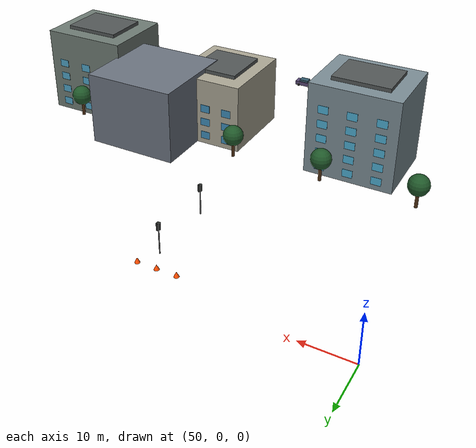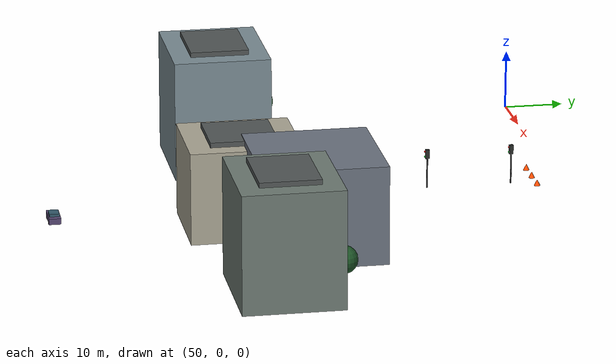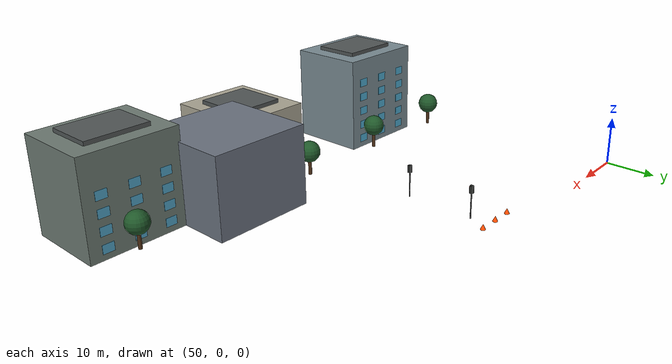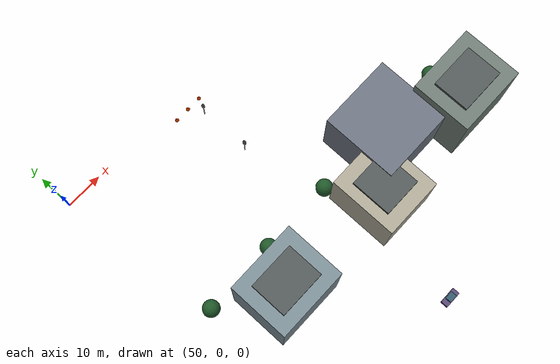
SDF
<sdf version="1.9">
 <world name="smart_city">
  <model name="building_4">
   <static>true</static>
   <pose>115 -45 8 0 0 0</pose>
   <link name="building">
    <visual name="v">
     <geometry><box><size>20 20 16</size></box></geometry>
     <material><ambient>0.42 0.45 0.5 1</ambient></material>
    </visual>
   </link>
  </model>
  <model name="cone_1">
   <static>true</static>
   <pose>84 -4 0.5 0 0 0</pose>
   <link name="cone">
    <visual name="v">
     <geometry><cone><radius>0.5</radius><length>1</length></cone></geometry>
     <material><ambient>1 0.3 0 1</ambient><diffuse>1 0.3 0 1</diffuse></material>
    </visual>
   </link>
  </model>
  <model name="cone_2">
   <static>true</static>
   <pose>88 -4 0.5 0 0 0</pose>
   <link name="cone">
    <visual name="v">
     <geometry><cone><radius>0.5</radius><length>1</length></cone></geometry>
     <material><ambient>1 0.3 0 1</ambient><diffuse>1 0.3 0 1</diffuse></material>
    </visual>
   </link>
  </model>
  <model name="cone_3">
   <static>true</static>
   <pose>92 -4 0.5 0 0 0</pose>
   <link name="cone">
    <visual name="v">
     <geometry><cone><radius>0.5</radius><length>1</length></cone></geometry>
     <material><ambient>1 0.3 0 1</ambient><diffuse>1 0.3 0 1</diffuse></material>
    </visual>
   </link>
  </model>
  <model name="city_block_08">
   <static>true</static>
   <pose>70 -54 0 0 0 0</pose>
   <link name="building">
    <visual name="facade">
     <pose>0 0 10.0 0 0 0</pose>
     <geometry><box><size>19 16 20</size></box></geometry>
     <material><ambient>0.48 0.55 0.58 1</ambient><diffuse>0.48 0.55 0.58 1</diffuse></material>
    </visual>
    <visual name="window_0_-608">
     <pose>-6.08 8.025 2.00 0 0 0</pose>
     <geometry><box><size>2.2 0.08 1.7</size></box></geometry>
     <material>
      <ambient>0.30 0.68 0.82 1</ambient>
      <diffuse>0.30 0.68 0.82 1</diffuse>
      <specular>0.35 0.35 0.35 1</specular>
     </material>
    </visual>
    <visual name="window_0_0">
     <pose>0.00 8.025 2.00 0 0 0</pose>
     <geometry><box><size>2.2 0.08 1.7</size></box></geometry>
     <material>
      <ambient>0.30 0.68 0.82 1</ambient>
      <diffuse>0.30 0.68 0.82 1</diffuse>
      <specular>0.35 0.35 0.35 1</specular>
     </material>
    </visual>
    <visual name="window_0_608">
     <pose>6.08 8.025 2.00 0 0 0</pose>
     <geometry><box><size>2.2 0.08 1.7</size></box></geometry>
     <material>
      <ambient>0.30 0.68 0.82 1</ambient>
      <diffuse>0.30 0.68 0.82 1</diffuse>
      <specular>0.35 0.35 0.35 1</specular>
     </material>
    </visual>
    <visual name="window_1_-608">
     <pose>-6.08 8.025 5.20 0 0 0</pose>
     <geometry><box><size>2.2 0.08 1.7</size></box></geometry>
     <material>
      <ambient>0.30 0.68 0.82 1</ambient>
      <diffuse>0.30 0.68 0.82 1</diffuse>
      <specular>0.35 0.35 0.35 1</specular>
     </material>
    </visual>
    <visual name="window_1_0">
     <pose>0.00 8.025 5.20 0 0 0</pose>
     <geometry><box><size>2.2 0.08 1.7</size></box></geometry>
     <material>
      <ambient>0.30 0.68 0.82 1</ambient>
      <diffuse>0.30 0.68 0.82 1</diffuse>
      <specular>0.35 0.35 0.35 1</specular>
     </material>
    </visual>
    <visual name="window_1_608">
     <pose>6.08 8.025 5.20 0 0 0</pose>
     <geometry><box><size>2.2 0.08 1.7</size></box></geometry>
     <material>
      <ambient>0.30 0.68 0.82 1</ambient>
      <diffuse>0.30 0.68 0.82 1</diffuse>
      <specular>0.35 0.35 0.35 1</specular>
     </material>
    </visual>
    <visual name="window_2_-608">
     <pose>-6.08 8.025 8.40 0 0 0</pose>
     <geometry><box><size>2.2 0.08 1.7</size></box></geometry>
     <material>
      <ambient>0.30 0.68 0.82 1</ambient>
      <diffuse>0.30 0.68 0.82 1</diffuse>
      <specular>0.35 0.35 0.35 1</specular>
     </material>
    </visual>
    <visual name="window_2_0">
     <pose>0.00 8.025 8.40 0 0 0</pose>
     <geometry><box><size>2.2 0.08 1.7</size></box></geometry>
     <material>
      <ambient>0.30 0.68 0.82 1</ambient>
      <diffuse>0.30 0.68 0.82 1</diffuse>
      <specular>0.35 0.35 0.35 1</specular>
     </material>
    </visual>
    <visual name="window_2_608">
     <pose>6.08 8.025 8.40 0 0 0</pose>
     <geometry><box><size>2.2 0.08 1.7</size></box></geometry>
     <material>
      <ambient>0.30 0.68 0.82 1</ambient>
      <diffuse>0.30 0.68 0.82 1</diffuse>
      <specular>0.35 0.35 0.35 1</specular>
     </material>
    </visual>
    <visual name="window_3_-608">
     <pose>-6.08 8.025 11.60 0 0 0</pose>
     <geometry><box><size>2.2 0.08 1.7</size></box></geometry>
     <material>
      <ambient>0.30 0.68 0.82 1</ambient>
      <diffuse>0.30 0.68 0.82 1</diffuse>
      <specular>0.35 0.35 0.35 1</specular>
     </material>
    </visual>
    <visual name="window_3_0">
     <pose>0.00 8.025 11.60 0 0 0</pose>
     <geometry><box><size>2.2 0.08 1.7</size></box></geometry>
     <material>
      <ambient>0.30 0.68 0.82 1</ambient>
      <diffuse>0.30 0.68 0.82 1</diffuse>
      <specular>0.35 0.35 0.35 1</specular>
     </material>
    </visual>
    <visual name="window_3_608">
     <pose>6.08 8.025 11.60 0 0 0</pose>
     <geometry><box><size>2.2 0.08 1.7</size></box></geometry>
     <material>
      <ambient>0.30 0.68 0.82 1</ambient>
      <diffuse>0.30 0.68 0.82 1</diffuse>
      <specular>0.35 0.35 0.35 1</specular>
     </material>
    </visual>
    <visual name="window_4_-608">
     <pose>-6.08 8.025 14.80 0 0 0</pose>
     <geometry><box><size>2.2 0.08 1.7</size></box></geometry>
     <material>
      <ambient>0.30 0.68 0.82 1</ambient>
      <diffuse>0.30 0.68 0.82 1</diffuse>
      <specular>0.35 0.35 0.35 1</specular>
     </material>
    </visual>
    <visual name="window_4_0">
     <pose>0.00 8.025 14.80 0 0 0</pose>
     <geometry><box><size>2.2 0.08 1.7</size></box></geometry>
     <material>
      <ambient>0.30 0.68 0.82 1</ambient>
      <diffuse>0.30 0.68 0.82 1</diffuse>
      <specular>0.35 0.35 0.35 1</specular>
     </material>
    </visual>
    <visual name="window_4_608">
     <pose>6.08 8.025 14.80 0 0 0</pose>
     <geometry><box><size>2.2 0.08 1.7</size></box></geometry>
     <material>
      <ambient>0.30 0.68 0.82 1</ambient>
      <diffuse>0.30 0.68 0.82 1</diffuse>
      <specular>0.35 0.35 0.35 1</specular>
     </material>
    </visual>
    <visual name="roof">
     <pose>0 0 20.4 0 0 0</pose>
     <geometry><box><size>12.3 9.6 0.8</size></box></geometry>
     <material><ambient>0.32 0.34 0.34 1</ambient><diffuse>0.32 0.34 0.34 1</diffuse></material>
    </visual>
   </link>
  </model>
  <model name="city_block_09">
   <static>true</static>
   <pose>103 -55 0 0 0 0</pose>
   <link name="building">
    <visual name="facade">
     <pose>0 0 7.5 0 0 0</pose>
     <geometry><box><size>16 18 15</size></box></geometry>
     <material><ambient>0.67 0.65 0.58 1</ambient><diffuse>0.67 0.65 0.58 1</diffuse></material>
    </visual>
    <visual name="window_0_-512">
     <pose>-5.12 9.025 2.00 0 0 0</pose>
     <geometry><box><size>2.2 0.08 1.7</size></box></geometry>
     <material>
      <ambient>0.24 0.55 0.72 1</ambient>
      <diffuse>0.24 0.55 0.72 1</diffuse>
      <specular>0.35 0.35 0.35 1</specular>
     </material>
    </visual>
    <visual name="window_0_0">
     <pose>0.00 9.025 2.00 0 0 0</pose>
     <geometry><box><size>2.2 0.08 1.7</size></box></geometry>
     <material>
      <ambient>0.24 0.55 0.72 1</ambient>
      <diffuse>0.24 0.55 0.72 1</diffuse>
      <specular>0.35 0.35 0.35 1</specular>
     </material>
    </visual>
    <visual name="window_0_512">
     <pose>5.12 9.025 2.00 0 0 0</pose>
     <geometry><box><size>2.2 0.08 1.7</size></box></geometry>
     <material>
      <ambient>0.24 0.55 0.72 1</ambient>
      <diffuse>0.24 0.55 0.72 1</diffuse>
      <specular>0.35 0.35 0.35 1</specular>
     </material>
    </visual>
    <visual name="window_1_-512">
     <pose>-5.12 9.025 5.20 0 0 0</pose>
     <geometry><box><size>2.2 0.08 1.7</size></box></geometry>
     <material>
      <ambient>0.24 0.55 0.72 1</ambient>
      <diffuse>0.24 0.55 0.72 1</diffuse>
      <specular>0.35 0.35 0.35 1</specular>
     </material>
    </visual>
    <visual name="window_1_0">
     <pose>0.00 9.025 5.20 0 0 0</pose>
     <geometry><box><size>2.2 0.08 1.7</size></box></geometry>
     <material>
      <ambient>0.24 0.55 0.72 1</ambient>
      <diffuse>0.24 0.55 0.72 1</diffuse>
      <specular>0.35 0.35 0.35 1</specular>
     </material>
    </visual>
    <visual name="window_1_512">
     <pose>5.12 9.025 5.20 0 0 0</pose>
     <geometry><box><size>2.2 0.08 1.7</size></box></geometry>
     <material>
      <ambient>0.24 0.55 0.72 1</ambient>
      <diffuse>0.24 0.55 0.72 1</diffuse>
      <specular>0.35 0.35 0.35 1</specular>
     </material>
    </visual>
    <visual name="window_2_-512">
     <pose>-5.12 9.025 8.40 0 0 0</pose>
     <geometry><box><size>2.2 0.08 1.7</size></box></geometry>
     <material>
      <ambient>0.24 0.55 0.72 1</ambient>
      <diffuse>0.24 0.55 0.72 1</diffuse>
      <specular>0.35 0.35 0.35 1</specular>
     </material>
    </visual>
    <visual name="window_2_0">
     <pose>0.00 9.025 8.40 0 0 0</pose>
     <geometry><box><size>2.2 0.08 1.7</size></box></geometry>
     <material>
      <ambient>0.24 0.55 0.72 1</ambient>
      <diffuse>0.24 0.55 0.72 1</diffuse>
      <specular>0.35 0.35 0.35 1</specular>
     </material>
    </visual>
    <visual name="window_2_512">
     <pose>5.12 9.025 8.40 0 0 0</pose>
     <geometry><box><size>2.2 0.08 1.7</size></box></geometry>
     <material>
      <ambient>0.24 0.55 0.72 1</ambient>
      <diffuse>0.24 0.55 0.72 1</diffuse>
      <specular>0.35 0.35 0.35 1</specular>
     </material>
    </visual>
    <visual name="roof">
     <pose>0 0 15.4 0 0 0</pose>
     <geometry><box><size>10.4 10.8 0.8</size></box></geometry>
     <material><ambient>0.32 0.34 0.34 1</ambient><diffuse>0.32 0.34 0.34 1</diffuse></material>
    </visual>
   </link>
  </model>
  <model name="city_block_10">
   <static>true</static>
   <pose>134 -53 0 0 0 0</pose>
   <link name="building">
    <visual name="facade">
     <pose>0 0 9.5 0 0 0</pose>
     <geometry><box><size>19 16 19</size></box></geometry>
     <material><ambient>0.43 0.48 0.45 1</ambient><diffuse>0.43 0.48 0.45 1</diffuse></material>
    </visual>
    <visual name="window_0_-608">
     <pose>-6.08 8.025 2.00 0 0 0</pose>
     <geometry><box><size>2.2 0.08 1.7</size></box></geometry>
     <material>
      <ambient>0.31 0.64 0.78 1</ambient>
      <diffuse>0.31 0.64 0.78 1</diffuse>
      <specular>0.35 0.35 0.35 1</specular>
     </material>
    </visual>
    <visual name="window_0_0">
     <pose>0.00 8.025 2.00 0 0 0</pose>
     <geometry><box><size>2.2 0.08 1.7</size></box></geometry>
     <material>
      <ambient>0.31 0.64 0.78 1</ambient>
      <diffuse>0.31 0.64 0.78 1</diffuse>
      <specular>0.35 0.35 0.35 1</specular>
     </material>
    </visual>
    <visual name="window_0_608">
     <pose>6.08 8.025 2.00 0 0 0</pose>
     <geometry><box><size>2.2 0.08 1.7</size></box></geometry>
     <material>
      <ambient>0.31 0.64 0.78 1</ambient>
      <diffuse>0.31 0.64 0.78 1</diffuse>
      <specular>0.35 0.35 0.35 1</specular>
     </material>
    </visual>
    <visual name="window_1_-608">
     <pose>-6.08 8.025 5.20 0 0 0</pose>
     <geometry><box><size>2.2 0.08 1.7</size></box></geometry>
     <material>
      <ambient>0.31 0.64 0.78 1</ambient>
      <diffuse>0.31 0.64 0.78 1</diffuse>
      <specular>0.35 0.35 0.35 1</specular>
     </material>
    </visual>
    <visual name="window_1_0">
     <pose>0.00 8.025 5.20 0 0 0</pose>
     <geometry><box><size>2.2 0.08 1.7</size></box></geometry>
     <material>
      <ambient>0.31 0.64 0.78 1</ambient>
      <diffuse>0.31 0.64 0.78 1</diffuse>
      <specular>0.35 0.35 0.35 1</specular>
     </material>
    </visual>
    <visual name="window_1_608">
     <pose>6.08 8.025 5.20 0 0 0</pose>
     <geometry><box><size>2.2 0.08 1.7</size></box></geometry>
     <material>
      <ambient>0.31 0.64 0.78 1</ambient>
      <diffuse>0.31 0.64 0.78 1</diffuse>
      <specular>0.35 0.35 0.35 1</specular>
     </material>
    </visual>
    <visual name="window_2_-608">
     <pose>-6.08 8.025 8.40 0 0 0</pose>
     <geometry><box><size>2.2 0.08 1.7</size></box></geometry>
     <material>
      <ambient>0.31 0.64 0.78 1</ambient>
      <diffuse>0.31 0.64 0.78 1</diffuse>
      <specular>0.35 0.35 0.35 1</specular>
     </material>
    </visual>
    <visual name="window_2_0">
     <pose>0.00 8.025 8.40 0 0 0</pose>
     <geometry><box><size>2.2 0.08 1.7</size></box></geometry>
     <material>
      <ambient>0.31 0.64 0.78 1</ambient>
      <diffuse>0.31 0.64 0.78 1</diffuse>
      <specular>0.35 0.35 0.35 1</specular>
     </material>
    </visual>
    <visual name="window_2_608">
     <pose>6.08 8.025 8.40 0 0 0</pose>
     <geometry><box><size>2.2 0.08 1.7</size></box></geometry>
     <material>
      <ambient>0.31 0.64 0.78 1</ambient>
      <diffuse>0.31 0.64 0.78 1</diffuse>
      <specular>0.35 0.35 0.35 1</specular>
     </material>
    </visual>
    <visual name="window_3_-608">
     <pose>-6.08 8.025 11.60 0 0 0</pose>
     <geometry><box><size>2.2 0.08 1.7</size></box></geometry>
     <material>
      <ambient>0.31 0.64 0.78 1</ambient>
      <diffuse>0.31 0.64 0.78 1</diffuse>
      <specular>0.35 0.35 0.35 1</specular>
     </material>
    </visual>
    <visual name="window_3_0">
     <pose>0.00 8.025 11.60 0 0 0</pose>
     <geometry><box><size>2.2 0.08 1.7</size></box></geometry>
     <material>
      <ambient>0.31 0.64 0.78 1</ambient>
      <diffuse>0.31 0.64 0.78 1</diffuse>
      <specular>0.35 0.35 0.35 1</specular>
     </material>
    </visual>
    <visual name="window_3_608">
     <pose>6.08 8.025 11.60 0 0 0</pose>
     <geometry><box><size>2.2 0.08 1.7</size></box></geometry>
     <material>
      <ambient>0.31 0.64 0.78 1</ambient>
      <diffuse>0.31 0.64 0.78 1</diffuse>
      <specular>0.35 0.35 0.35 1</specular>
     </material>
    </visual>
    <visual name="roof">
     <pose>0 0 19.4 0 0 0</pose>
     <geometry><box><size>12.3 9.6 0.8</size></box></geometry>
     <material><ambient>0.32 0.34 0.34 1</ambient><diffuse>0.32 0.34 0.34 1</diffuse></material>
    </visual>
   </link>
  </model>
  <model name="street_tree_12">
   <static>true</static>
   <pose>55 -44 0 0 0 0</pose>
   <link name="tree">
    <visual name="trunk">
     <pose>0 0 2 0 0 0</pose>
     <geometry><cylinder><radius>0.35</radius><length>4</length></cylinder></geometry>
     <material><ambient>0.30 0.18 0.08 1</ambient><diffuse>0.30 0.18 0.08 1</diffuse></material>
    </visual>
    <visual name="crown">
     <pose>0 0 5 0 0 0</pose>
     <geometry><sphere><radius>2.2</radius></sphere></geometry>
     <material><ambient>0.12 0.34 0.16 1</ambient><diffuse>0.12 0.34 0.16 1</diffuse></material>
    </visual>
   </link>
  </model>
  <model name="street_tree_13">
   <static>true</static>
   <pose>75 -44 0 0 0 0</pose>
   <link name="tree">
    <visual name="trunk">
     <pose>0 0 2 0 0 0</pose>
     <geometry><cylinder><radius>0.35</radius><length>4</length></cylinder></geometry>
     <material><ambient>0.30 0.18 0.08 1</ambient><diffuse>0.30 0.18 0.08 1</diffuse></material>
    </visual>
    <visual name="crown">
     <pose>0 0 5 0 0 0</pose>
     <geometry><sphere><radius>2.2</radius></sphere></geometry>
     <material><ambient>0.12 0.34 0.16 1</ambient><diffuse>0.12 0.34 0.16 1</diffuse></material>
    </visual>
   </link>
  </model>
  <model name="street_tree_14">
   <static>true</static>
   <pose>95 -44 0 0 0 0</pose>
   <link name="tree">
    <visual name="trunk">
     <pose>0 0 2 0 0 0</pose>
     <geometry><cylinder><radius>0.35</radius><length>4</length></cylinder></geometry>
     <material><ambient>0.30 0.18 0.08 1</ambient><diffuse>0.30 0.18 0.08 1</diffuse></material>
    </visual>
    <visual name="crown">
     <pose>0 0 5 0 0 0</pose>
     <geometry><sphere><radius>2.2</radius></sphere></geometry>
     <material><ambient>0.12 0.34 0.16 1</ambient><diffuse>0.12 0.34 0.16 1</diffuse></material>
    </visual>
   </link>
  </model>
  <model name="street_tree_15">
   <static>true</static>
   <pose>115 -44 0 0 0 0</pose>
   <link name="tree">
    <visual name="trunk">
     <pose>0 0 2 0 0 0</pose>
     <geometry><cylinder><radius>0.35</radius><length>4</length></cylinder></geometry>
     <material><ambient>0.30 0.18 0.08 1</ambient><diffuse>0.30 0.18 0.08 1</diffuse></material>
    </visual>
    <visual name="crown">
     <pose>0 0 5 0 0 0</pose>
     <geometry><sphere><radius>2.2</radius></sphere></geometry>
     <material><ambient>0.12 0.34 0.16 1</ambient><diffuse>0.12 0.34 0.16 1</diffuse></material>
    </visual>
   </link>
  </model>
  <model name="street_tree_16">
   <static>true</static>
   <pose>135 -44 0 0 0 0</pose>
   <link name="tree">
    <visual name="trunk">
     <pose>0 0 2 0 0 0</pose>
     <geometry><cylinder><radius>0.35</radius><length>4</length></cylinder></geometry>
     <material><ambient>0.30 0.18 0.08 1</ambient><diffuse>0.30 0.18 0.08 1</diffuse></material>
    </visual>
    <visual name="crown">
     <pose>0 0 5 0 0 0</pose>
     <geometry><sphere><radius>2.2</radius></sphere></geometry>
     <material><ambient>0.12 0.34 0.16 1</ambient><diffuse>0.12 0.34 0.16 1</diffuse></material>
    </visual>
   </link>
  </model>
  <model name="traffic_signal_7">
   <static>true</static>
   <pose>90 -8 0 0 0 0</pose>
   <link name="signal">
    <visual name="mast">
     <pose>0 0 3 0 0 0</pose>
     <geometry><cylinder><radius>0.12</radius><length>6</length></cylinder></geometry>
     <material><ambient>0.12 0.12 0.12 1</ambient><diffuse>0.12 0.12 0.12 1</diffuse></material>
    </visual>
    <visual name="head">
     <pose>0 0 5.8 0 0 0</pose>
     <geometry><box><size>0.55 0.65 1.5</size></box></geometry>
     <material><ambient>0.16 0.17 0.16 1</ambient><diffuse>0.16 0.17 0.16 1</diffuse></material>
    </visual>
    <visual name="red_lamp">
     <pose>0 -0.34 6.2 0 0 0</pose>
     <geometry><sphere><radius>0.16</radius></sphere></geometry>
     <material>
      <ambient>0.9 0.04 0.02 1</ambient>
      <diffuse>0.9 0.04 0.02 1</diffuse>
      <emissive>0.6 0 0 1</emissive>
     </material>
    </visual>
    <visual name="green_lamp">
     <pose>0 -0.34 5.35 0 0 0</pose>
     <geometry><sphere><radius>0.16</radius></sphere></geometry>
     <material><ambient>0.02 0.7 0.12 1</ambient><diffuse>0.02 0.7 0.12 1</diffuse></material>
    </visual>
   </link>
  </model>
  <model name="traffic_signal_8">
   <static>true</static>
   <pose>90 -22 0 0 0 0</pose>
   <link name="signal">
    <visual name="mast">
     <pose>0 0 3 0 0 0</pose>
     <geometry><cylinder><radius>0.12</radius><length>6</length></cylinder></geometry>
     <material><ambient>0.12 0.12 0.12 1</ambient><diffuse>0.12 0.12 0.12 1</diffuse></material>
    </visual>
    <visual name="head">
     <pose>0 0 5.8 0 0 0</pose>
     <geometry><box><size>0.55 0.65 1.5</size></box></geometry>
     <material><ambient>0.16 0.17 0.16 1</ambient><diffuse>0.16 0.17 0.16 1</diffuse></material>
    </visual>
    <visual name="red_lamp">
     <pose>0 -0.34 6.2 0 0 0</pose>
     <geometry><sphere><radius>0.16</radius></sphere></geometry>
     <material>
      <ambient>0.9 0.04 0.02 1</ambient>
      <diffuse>0.9 0.04 0.02 1</diffuse>
      <emissive>0.6 0 0 1</emissive>
     </material>
    </visual>
    <visual name="green_lamp">
     <pose>0 -0.34 5.35 0 0 0</pose>
     <geometry><sphere><radius>0.16</radius></sphere></geometry>
     <material><ambient>0.02 0.7 0.12 1</ambient><diffuse>0.02 0.7 0.12 1</diffuse></material>
    </visual>
   </link>
  </model>
  <model name="chennai_traffic_06">
   <static>false</static>
   <pose>96 -84 0 0 0 3.1416</pose>
   <link name="base_link">
    <pose>0 0 0.72 0 0 0</pose>
    <inertial>
     <mass>650</mass>
     <inertia><ixx>487.5</ixx><iyy>715.0</iyy><izz>910.0</izz><ixy>0</ixy><ixz>0</ixz><iyz>0</iyz></inertia>
    </inertial>
    <collision name="body_collision"><geometry><box><size>4.5 1.95 0.96</size></box></geometry></collision>
    <visual name="body">
     <geometry><box><size>4.5 1.95 0.96</size></box></geometry>
     <material><ambient>0.34 0.28 0.45 1</ambient><diffuse>0.34 0.28 0.45 1</diffuse></material>
    </visual>
    <visual name="cabin">
     <pose>-0.15 0 0.63 0 0 0</pose>
     <geometry><box><size>2.16 1.60 0.63</size></box></geometry>
     <material><ambient>0.20 0.35 0.42 1</ambient><diffuse>0.20 0.35 0.42 1</diffuse></material>
    </visual>
    <collision name="wheel_collision_r_r">
     <pose>-1.40 -0.90 -0.38 1.5708 0 0</pose>
     <geometry><cylinder><radius>0.34</radius><length>0.20</length></cylinder></geometry>
     <surface><friction><ode><mu>0.004</mu><mu2>0.004</mu2></ode></friction></surface>
    </collision>
    <visual name="wheel_r_r">
     <pose>-1.40 -0.90 -0.38 1.5708 0 0</pose>
     <geometry><cylinder><radius>0.34</radius><length>0.20</length></cylinder></geometry>
     <material><ambient>0.055 0.055 0.06 1</ambient><diffuse>0.055 0.055 0.06 1</diffuse></material>
    </visual>
    <collision name="wheel_collision_r_l">
     <pose>-1.40 0.90 -0.38 1.5708 0 0</pose>
     <geometry><cylinder><radius>0.34</radius><length>0.20</length></cylinder></geometry>
     <surface><friction><ode><mu>0.004</mu><mu2>0.004</mu2></ode></friction></surface>
    </collision>
    <visual name="wheel_r_l">
     <pose>-1.40 0.90 -0.38 1.5708 0 0</pose>
     <geometry><cylinder><radius>0.34</radius><length>0.20</length></cylinder></geometry>
     <material><ambient>0.055 0.055 0.06 1</ambient><diffuse>0.055 0.055 0.06 1</diffuse></material>
    </visual>
    <collision name="wheel_collision_f_r">
     <pose>1.40 -0.90 -0.38 1.5708 0 0</pose>
     <geometry><cylinder><radius>0.34</radius><length>0.20</length></cylinder></geometry>
     <surface><friction><ode><mu>0.004</mu><mu2>0.004</mu2></ode></friction></surface>
    </collision>
    <visual name="wheel_f_r">
     <pose>1.40 -0.90 -0.38 1.5708 0 0</pose>
     <geometry><cylinder><radius>0.34</radius><length>0.20</length></cylinder></geometry>
     <material><ambient>0.055 0.055 0.06 1</ambient><diffuse>0.055 0.055 0.06 1</diffuse></material>
    </visual>
    <collision name="wheel_collision_f_l">
     <pose>1.40 0.90 -0.38 1.5708 0 0</pose>
     <geometry><cylinder><radius>0.34</radius><length>0.20</length></cylinder></geometry>
     <surface><friction><ode><mu>0.004</mu><mu2>0.004</mu2></ode></friction></surface>
    </collision>
    <visual name="wheel_f_l">
     <pose>1.40 0.90 -0.38 1.5708 0 0</pose>
     <geometry><cylinder><radius>0.34</radius><length>0.20</length></cylinder></geometry>
     <material><ambient>0.055 0.055 0.06 1</ambient><diffuse>0.055 0.055 0.06 1</diffuse></material>
    </visual>
   </link>
   <plugin filename="gz-sim-trajectory-follower-system" name="gz::sim::systems::TrajectoryFollower">
    <link_name>base_link</link_name>
    <loop>true</loop>
    <range_tolerance>3.0</range_tolerance>
    <bearing_tolerance>8.0</bearing_tolerance>
    <force>90</force>
    <torque>220</torque>
    <waypoints>
     <waypoint>96 -84</waypoint>
     <waypoint>-96 -84</waypoint>
     <waypoint>-96 -236</waypoint>
     <waypoint>96 -236</waypoint>
    </waypoints>
   </plugin>
  </model>
 </world>
</sdf>
